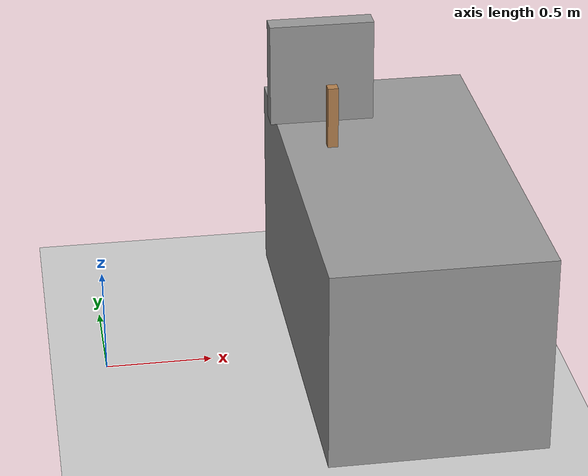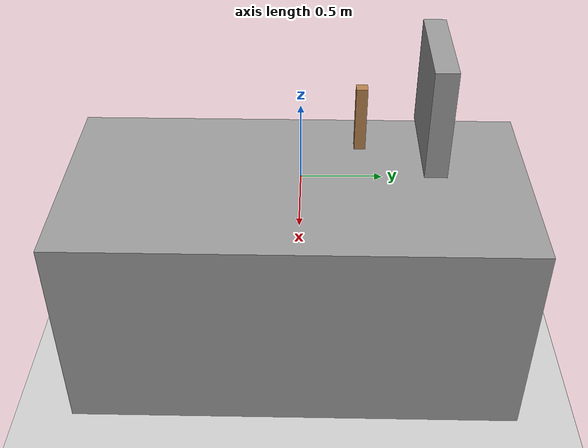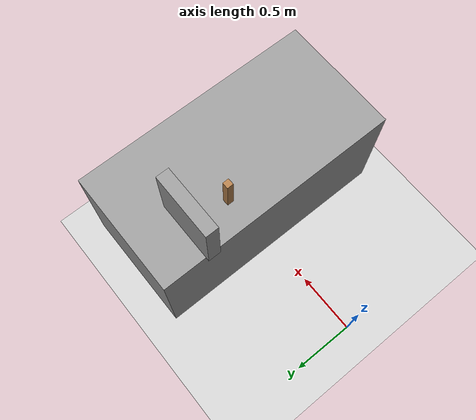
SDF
<sdf version="1.6">
 <world name="default">
  <light name="sun" type="directional">
   <pose>0 0 10 0 -0 0</pose>
   <diffuse>0.8 0.8 0.8 1</diffuse>
   <specular>0.1 0.1 0.1 1</specular>
   <attenuation>
    <range>1000</range>
    <constant>0.9</constant>
    <linear>0.01</linear>
    <quadratic>0.001</quadratic>
   </attenuation>
   <direction>-0.5 0.5 -1</direction>
  </light>
  <model name="ground_plane">
   <static>1</static>
   <link name="link">
    <collision name="collision">
     <geometry><plane><normal>0 0 1</normal><size>100 100</size></plane></geometry>
     <surface><friction><ode><mu>100</mu><mu2>50</mu2></ode></friction></surface>
    </collision>
    <visual name="visual">
     <cast_shadows>0</cast_shadows>
     <geometry><plane><normal>0 0 1</normal><size>100 100</size></plane></geometry>
     <material>
      <script><uri>file://media/materials/scripts/gazebo.material</uri><name>Gazebo/Grey</name></script>
     </material>
    </visual>
   </link>
  </model>
  <gravity>0 0 -9.8</gravity>
  <magnetic_field>6e-06 2.3e-05 -4.2e-05</magnetic_field>
  <atmosphere type="adiabatic"/>
  <physics name="default_physics" default="0" type="ode">
   <max_step_size>0.001</max_step_size>
   <real_time_factor>1</real_time_factor>
   <real_time_update_rate>1000</real_time_update_rate>
  </physics>
  <scene><ambient>0.4 0.4 0.4 1</ambient><background>0.7 0.7 0.7 1</background><shadows>1</shadows></scene>
  <spherical_coordinates>
   <surface_model>EARTH_WGS84</surface_model>
   <latitude_deg>0</latitude_deg>
   <longitude_deg>0</longitude_deg>
   <elevation>0</elevation>
   <heading_deg>0</heading_deg>
  </spherical_coordinates>
  <model name="table2">
   <link name="link">
    <inertial>
     <mass>100</mass>
     <inertia><ixx>16.6667</ixx><ixy>0</ixy><ixz>0</ixz><iyy>16.6667</iyy><iyz>0</iyz><izz>16.6667</izz></inertia>
    </inertial>
    <visual name="visual">
     <geometry><box><size>1 2 0.95</size></box></geometry>
     <material>
      <script><name>Gazebo/Grey</name><uri>file://media/materials/scripts/gazebo.material</uri></script>
      <ambient>0.3 0.3 0.3 1</ambient>
      <diffuse>0.7 0.7 0.7 1</diffuse>
      <specular>0.01 0.01 0.01 1</specular>
      <emissive>0 0 0 1</emissive>
      <shader type="vertex"><normal_map>__default__</normal_map></shader>
     </material>
    </visual>
    <collision name="collision">
     <geometry><box><size>1 2 0.95</size></box></geometry>
     <surface>
      <friction>
       <ode><mu>1</mu><mu2>1</mu2><fdir1>0 0 0</fdir1><slip1>0</slip1><slip2>0</slip2></ode>
       <torsional>
        <coefficient>1</coefficient>
        <patch_radius>0</patch_radius>
        <surface_radius>0</surface_radius>
        <use_patch_radius>1</use_patch_radius>
        <ode><slip>0</slip></ode>
       </torsional>
      </friction>
      <bounce><restitution_coefficient>0</restitution_coefficient><threshold>1e+06</threshold></bounce>
      <contact>
       <collide_without_contact>0</collide_without_contact>
       <collide_without_contact_bitmask>1</collide_without_contact_bitmask>
       <collide_bitmask>1</collide_bitmask>
       <ode>
        <soft_cfm>0</soft_cfm>
        <soft_erp>0.2</soft_erp>
        <kp>1e+13</kp>
        <kd>1</kd>
        <max_vel>0.01</max_vel>
        <min_depth>0</min_depth>
       </ode>
       <bullet>
        <split_impulse>1</split_impulse>
        <split_impulse_penetration_threshold>-0.01</split_impulse_penetration_threshold>
        <soft_cfm>0</soft_cfm>
        <soft_erp>0.2</soft_erp>
        <kp>1e+13</kp>
        <kd>1</kd>
       </bullet>
      </contact>
     </surface>
    </collision>
   </link>
   <static>0</static>
   <pose>1.40006 -1e-05 0.474517 -5e-06 -5e-06 2e-06</pose>
  </model>
  <model name="box1_0">
   <link name="link">
    <inertial>
     <mass>0.3</mass>
     <inertia><ixx>0.066667</ixx><ixy>0</ixy><ixz>0</ixz><iyy>0.136667</iyy><iyz>0</iyz><izz>0.21</izz></inertia>
    </inertial>
    <visual name="visual">
     <geometry><box><size>0.05 0.05 0.3</size></box></geometry>
     <material>
      <script><name>Gazebo/Wood</name><uri>file://media/materials/scripts/gazebo.material</uri></script>
      <ambient>0.3 0.3 0.3 1</ambient>
      <diffuse>0.7 0.7 0.7 1</diffuse>
      <specular>0.01 0.01 0.01 1</specular>
      <emissive>0.7 0.5 0 1</emissive>
      <shader type="vertex"><normal_map>__default__</normal_map></shader>
     </material>
    </visual>
    <collision name="collision">
     <geometry><box><size>0.05 0.05 0.3</size></box></geometry>
     <surface>
      <friction>
       <ode><mu>1</mu><mu2>1</mu2><fdir1>0 0 0</fdir1><slip1>0</slip1><slip2>0</slip2></ode>
       <torsional>
        <coefficient>1</coefficient>
        <patch_radius>0</patch_radius>
        <surface_radius>0</surface_radius>
        <use_patch_radius>1</use_patch_radius>
        <ode><slip>0</slip></ode>
       </torsional>
      </friction>
      <bounce><restitution_coefficient>0</restitution_coefficient><threshold>1e+06</threshold></bounce>
      <contact>
       <collide_without_contact>0</collide_without_contact>
       <collide_without_contact_bitmask>1</collide_without_contact_bitmask>
       <collide_bitmask>1</collide_bitmask>
       <ode>
        <soft_cfm>0</soft_cfm>
        <soft_erp>0.2</soft_erp>
        <kp>1e+13</kp>
        <kd>1</kd>
        <max_vel>0.01</max_vel>
        <min_depth>0</min_depth>
       </ode>
       <bullet>
        <split_impulse>1</split_impulse>
        <split_impulse_penetration_threshold>-0.01</split_impulse_penetration_threshold>
        <soft_cfm>0</soft_cfm>
        <soft_erp>0.2</soft_erp>
        <kp>1e+13</kp>
        <kd>1</kd>
       </bullet>
      </contact>
     </surface>
    </collision>
   </link>
   <static>0</static>
   <pose>1.12489 0.279899 1.0995 -1e-05 -1e-06 0.015146</pose>
  </model>
  <model name="obstacle">
   <link name="link">
    <inertial>
     <mass>0.5</mass>
     <inertia>
      <ixx>0.086667</ixx>
      <ixy>0</ixy>
      <ixz>0</ixz>
      <iyy>0.0166667</iyy>
      <iyz>0</iyz>
      <izz>0.086667</izz>
     </inertia>
    </inertial>
    <visual name="visual">
     <geometry><box><size>0.5 0.1 0.5</size></box></geometry>
     <material>
      <script><name>Gazebo/Grey</name><uri>file://media/materials/scripts/gazebo.material</uri></script>
      <ambient>0.3 0.3 0.3 1</ambient>
      <diffuse>0.7 0.7 0.7 1</diffuse>
      <specular>0.01 0.01 0.01 1</specular>
      <emissive>0.6 0.3 0 1</emissive>
      <shader type="vertex"><normal_map>__default__</normal_map></shader>
     </material>
    </visual>
    <collision name="collision">
     <geometry><box><size>0.5 0.1 0.5</size></box></geometry>
     <surface>
      <friction>
       <ode><mu>1</mu><mu2>1</mu2><fdir1>0 0 0</fdir1><slip1>0</slip1><slip2>0</slip2></ode>
       <torsional>
        <coefficient>1</coefficient>
        <patch_radius>0</patch_radius>
        <surface_radius>0</surface_radius>
        <use_patch_radius>1</use_patch_radius>
        <ode><slip>0</slip></ode>
       </torsional>
      </friction>
      <bounce><restitution_coefficient>0</restitution_coefficient><threshold>1e+06</threshold></bounce>
      <contact>
       <collide_without_contact>0</collide_without_contact>
       <collide_without_contact_bitmask>1</collide_without_contact_bitmask>
       <collide_bitmask>1</collide_bitmask>
       <ode>
        <soft_cfm>0</soft_cfm>
        <soft_erp>0.2</soft_erp>
        <kp>1e+13</kp>
        <kd>1</kd>
        <max_vel>0.01</max_vel>
        <min_depth>0</min_depth>
       </ode>
       <bullet>
        <split_impulse>1</split_impulse>
        <split_impulse_penetration_threshold>-0.01</split_impulse_penetration_threshold>
        <soft_cfm>0</soft_cfm>
        <soft_erp>0.2</soft_erp>
        <kp>1e+13</kp>
        <kd>1</kd>
       </bullet>
      </contact>
     </surface>
    </collision>
   </link>
   <static>0</static>
   <pose>1.12 0.6 1.2 0 -0 0</pose>
  </model>
 </world>
</sdf>
